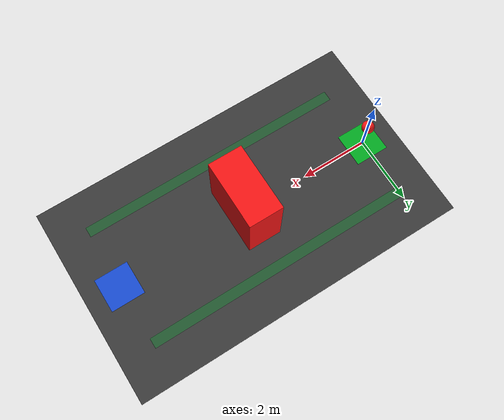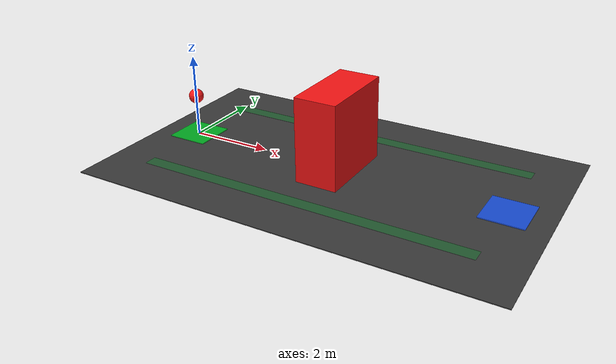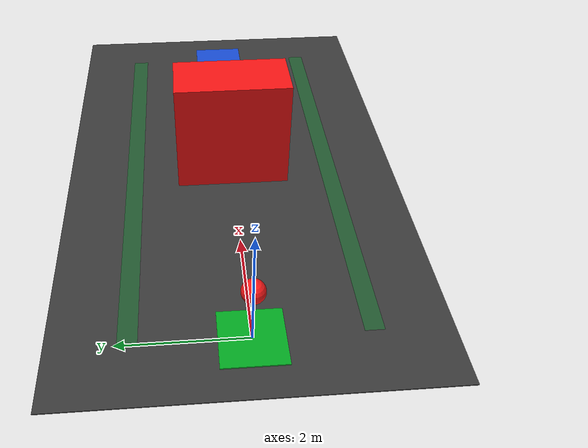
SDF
<?xml version="1.0" ?>
<sdf version="1.6">
  <world name="obstacle_course">
    <include>
      <uri>model://sun</uri>
    </include>

    <physics name="default_physics" type="ode">
      <max_step_size>0.001</max_step_size>
      <real_time_update_rate>1000</real_time_update_rate>
    </physics>

    <model name="ground_plane_obstacle_course">
      <static>true</static>
      <pose>4 0 -0.01 0 0 0</pose>
      <link name="link">
        <collision name="collision">
          <geometry><box><size>10 6 0.02</size></box></geometry>
        </collision>
        <visual name="visual">
          <geometry><box><size>10 6 0.02</size></box></geometry>
          <material><ambient>0.18 0.18 0.18 1</ambient><diffuse>0.22 0.22 0.22 1</diffuse></material>
        </visual>
      </link>
    </model>

    <model name="start_zone">
      <static>true</static>
      <pose>0 0 0.012 0 0 0</pose>
      <link name="link">
        <visual name="visual">
          <geometry><box><size>1.0 1.0 0.024</size></box></geometry>
          <material><ambient>0 0.8 0.15 0.8</ambient><diffuse>0 0.8 0.15 0.8</diffuse></material>
        </visual>
      </link>
    </model>

    <model name="goal_zone">
      <static>true</static>
      <pose>8 0 0.014 0 0 0</pose>
      <link name="link">
        <visual name="visual">
          <geometry><box><size>1.0 1.0 0.028</size></box></geometry>
          <material><ambient>0.1 0.35 1 0.8</ambient><diffuse>0.1 0.35 1 0.8</diffuse></material>
        </visual>
      </link>
    </model>

    <!-- This wall blocks the direct start-to-goal line at y=0. -->
    <model name="central_blocking_wall">
      <static>true</static>
      <pose>4 0 1 0 0 0</pose>
      <link name="wall">
        <collision name="collision">
          <geometry><box><size>1.0 2.0 2.0</size></box></geometry>
        </collision>
        <visual name="visual">
          <geometry><box><size>1.0 2.0 2.0</size></box></geometry>
          <material><ambient>0.95 0.08 0.08 1</ambient><diffuse>0.95 0.08 0.08 1</diffuse></material>
        </visual>
      </link>
    </model>

    <model name="safe_corridor_hints">
      <static>true</static>
      <link name="upper"><pose>4 1.8 0.015 0 0 0</pose><visual name="v"><geometry><box><size>8 0.3 0.01</size></box></geometry><material><ambient>0.0 0.6 0.15 0.35</ambient><diffuse>0.0 0.6 0.15 0.35</diffuse></material></visual></link>
      <link name="lower"><pose>4 -1.8 0.016 0 0 0</pose><visual name="v"><geometry><box><size>8 0.3 0.01</size></box></geometry><material><ambient>0.0 0.6 0.15 0.35</ambient><diffuse>0.0 0.6 0.15 0.35</diffuse></material></visual></link>
    </model>

    <model name="mock_drone">
      <static>false</static>
      <pose>0 0 1 0 0 0</pose>
      <link name="base_link">
        <inertial><mass>1.0</mass><inertia><ixx>0.01</ixx><iyy>0.01</iyy><izz>0.02</izz></inertia></inertial>
        <collision name="collision"><geometry><sphere><radius>0.18</radius></sphere></geometry></collision>
        <visual name="visual"><geometry><sphere><radius>0.18</radius></sphere></geometry><material><ambient>1 0.1 0.1 1</ambient><diffuse>1 0.1 0.1 1</diffuse></material></visual>
      </link>
    </model>
  </world>
</sdf>
